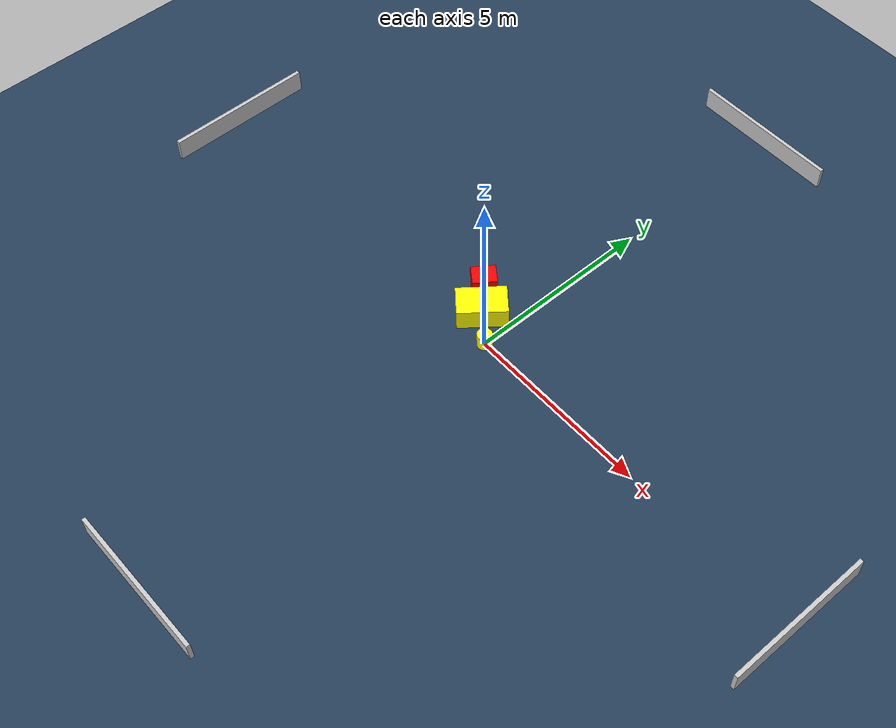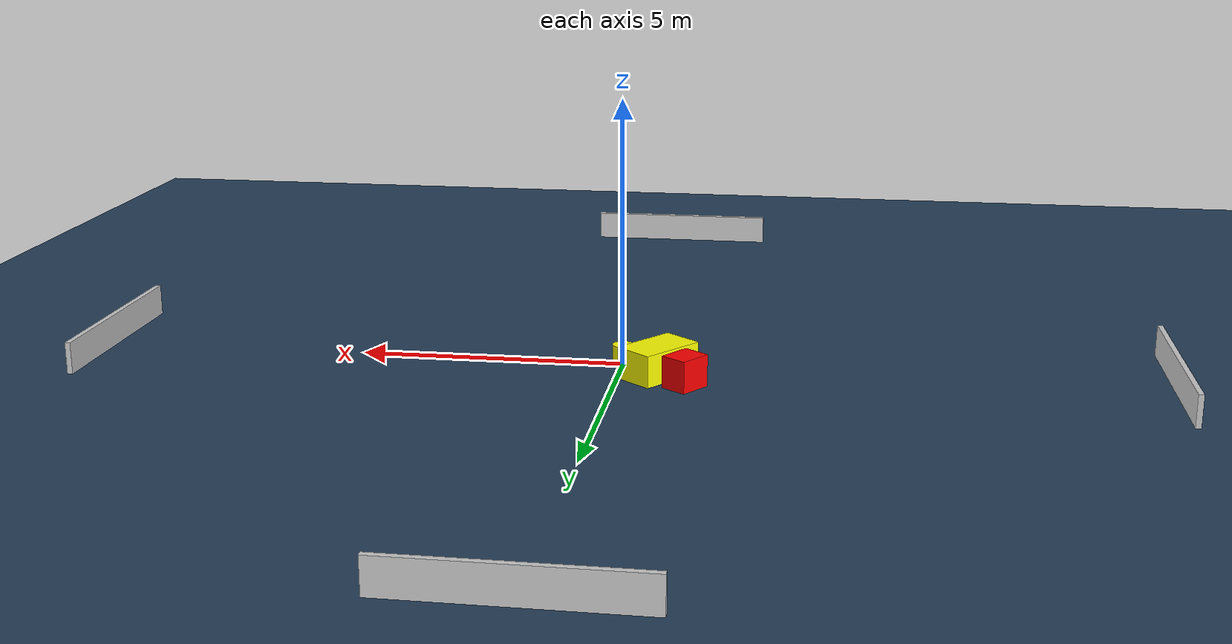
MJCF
<?xml version="1.0" ?>
<mujoco model="generated_environment">
  <option timestep="0.01" integrator="RK4" cone="elliptic"/>
  <default>
    <geom density="1"/>
  </default>
  <asset>
    <texture builtin="gradient" height="3072" name="skybox" rgb1="0.3 0.5 0.7" rgb2="0 0 0" type="skybox" width="512"/>
    <texture builtin="checker" height="300" name="groundplane" rgb1="0.2 0.3 0.4" rgb2="0.1 0.2 0.3" type="2d" width="300"/>
    <material name="groundplane" reflectance="0.2" texrepeat="5 5" texture="groundplane"/>
  </asset>
  <worldbody>
    <light dir="0 0 -1" directional="true" pos="0 0 1.5"/>
    <geom condim="3" friction="0.5 0.005 0.001" material="groundplane" name="floor" pos="0 0 0" size="0 0 0.05" type="plane"/>
    <body name="walls">
      <geom name="wall_1" condim="4" pos="-10.0 0.0 0.3" rgba="0.800000011920929 0.800000011920929 0.800000011920929 1.0" size="0.05 2.0 0.3" type="box"/>
      <geom name="wall_2" condim="4" pos="10.0 0.0 0.3" rgba="0.800000011920929 0.800000011920929 0.800000011920929 1.0" size="0.05 2.0 0.3" type="box"/>
      <geom name="wall_3" condim="4" pos="0.0 -10.0 0.3" rgba="0.800000011920929 0.800000011920929 0.800000011920929 1.0" size="2.0 0.05 0.3" type="box"/>
      <geom name="wall_4" condim="4" pos="0.0 10.0 0.3" rgba="0.800000011920929 0.800000011920929 0.800000011920929 1.0" size="2.0 0.05 0.3" type="box"/>
    </body>
    <body name="robot">
      <joint name="joint_x" type="slide" pos="0 0 0" axis="1 0 0"/>
      <joint name="joint_y" type="slide" pos="0 0 0" axis="0 1 0"/>
      <geom name="robot" type="cylinder" pos="0.0 0.0 0.2" size="0.2 0.2 0.0" mass="5.0" friction="1.0 0.005 0.0001" condim="4" rgba="1.0 1.0 0.0 1.0"/>
    </body>
    <body name="obstacle_1_movable">
      <geom name="obstacle_1_movable" condim="4" pos="-0.7230559813361075 0.5457176397472405 0.3" euler="0 0 141.18610316994634" friction="0.0 0.005 0.001" rgba="1.0 1.0 0.0 1.0" size="0.3978680132582333 0.6440765266662032 0.3" type="box" mass="0.1"/>
      <joint type="free"/>
    </body>
    <body name="obstacle_2_static">
      <geom name="obstacle_2_static" condim="4" pos="-1.277855163520249 1.1112511361540307 0.3" euler="0 0 54.07740280560702" friction="0.0 0.005 0.001" rgba="1.0 0.0 0.0 1.0" size="0.31579118640033 0.262168528607166 0.3" type="box"/>
    </body>
  </worldbody>
  <actuator>
    <motor name="actuator_x" joint="joint_x" gear="1" ctrlrange="-1 1"/>
    <motor name="actuator_y" joint="joint_y" gear="1" ctrlrange="-1 1"/>
  </actuator>
</mujoco>
